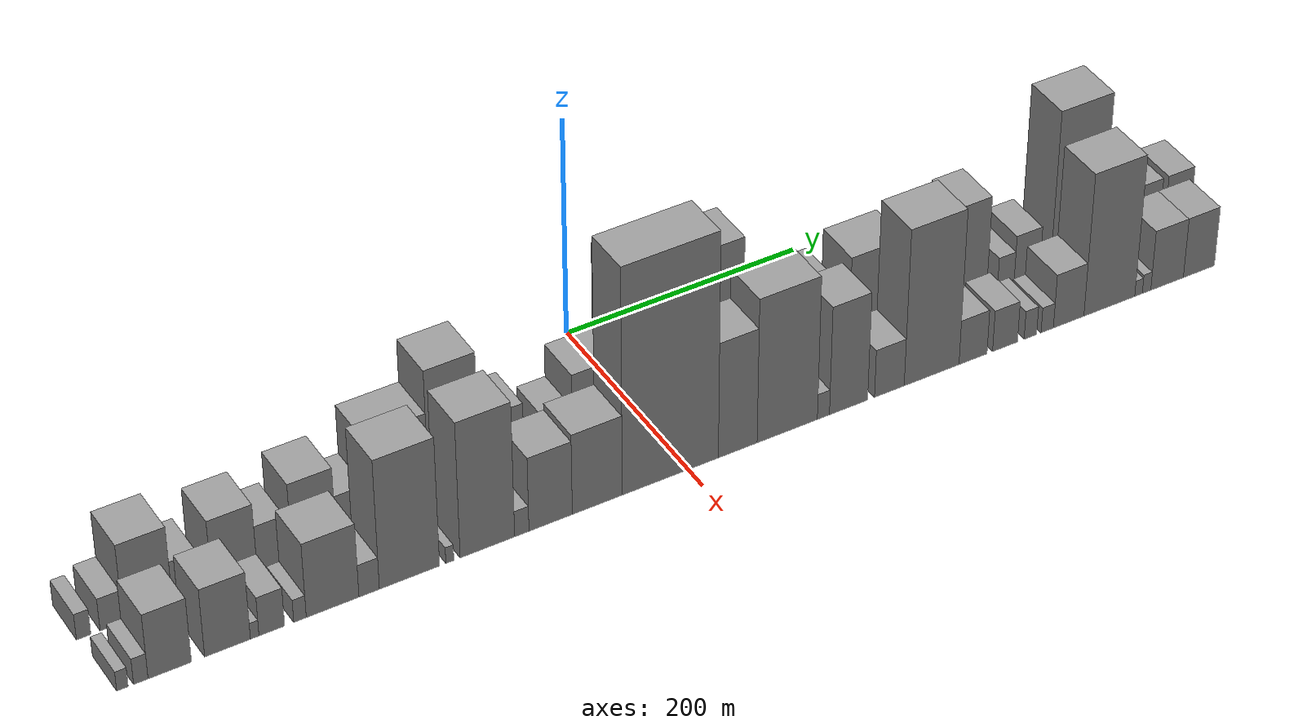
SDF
<sdf version="1.6">
 <world name="default">
  <scene>
   <sky><clouds><speed>12</speed></clouds></sky>
   <ambient>0.4 0.4 0.4 1</ambient>
   <background>0.7 0.7 0.7 1</background>
   <shadows>1</shadows>
  </scene>
  <gravity>0 0 -9.8066</gravity>
  <magnetic_field>6e-06 2.3e-05 -4.2e-05</magnetic_field>
  <physics default="0" name="default_physics" type="ode">
   <ode>
    <solver>
     <type>quick</type>
     <iters>10</iters>
     <sor>1.0</sor>
     <use_dynamic_moi_rescaling>0</use_dynamic_moi_rescaling>
    </solver>
    <constraints>
     <cfm>0</cfm>
     <erp>0.2</erp>
     <contact_max_correcting_vel>100</contact_max_correcting_vel>
     <contact_surface_layer>0.001</contact_surface_layer>
    </constraints>
   </ode>
   <max_step_size>0.004</max_step_size>
   <real_time_factor>1</real_time_factor>
   <real_time_update_rate>250</real_time_update_rate>
  </physics>
  <light name="sun" type="directional">
   <pose>0 0 10 0 0 0</pose>
   <diffuse>0.8 0.8 0.8 1</diffuse>
   <specular>0.2 0.2 0.2 1</specular>
   <attenuation>
    <range>1000</range>
    <constant>0.9</constant>
    <linear>0.01</linear>
    <quadratic>0.001</quadratic>
   </attenuation>
   <direction>-0.5 0.1 -0.9</direction>
  </light>
  <model name="building_1">
   <static>1</static>
   <pose>100.0000 -450.5411 0 0.000000 0.000000 0.000000</pose>
   <link name="link">
    <pose>0 0 12.00 0 0 0</pose>
    <collision name="collision"><geometry><box><size>40.0000 10.9178 24.0000</size></box></geometry></collision>
    <visual name="visual">
     <cast_shadows>0</cast_shadows>
     <geometry><box><size>40.0000 10.9178 24.0000</size></box></geometry>
     <material>
      <script>
       <uri>model://grey_wall/materials/scripts</uri>
       <uri>model://grey_wall/materials/textures</uri>
       <name>vrc/grey_wall</name>
      </script>
     </material>
    </visual>
   </link>
  </model>
  <model name="building_2">
   <static>1</static>
   <pose>100.0000 -429.3269 0 0.000000 0.000000 0.000000</pose>
   <link name="link">
    <pose>0 0 15.00 0 0 0</pose>
    <collision name="collision"><geometry><box><size>40.0000 17.5106 30.0000</size></box></geometry></collision>
    <visual name="visual">
     <cast_shadows>0</cast_shadows>
     <geometry><box><size>40.0000 17.5106 30.0000</size></box></geometry>
     <material>
      <script>
       <uri>model://grey_wall/materials/scripts</uri>
       <uri>model://grey_wall/materials/textures</uri>
       <name>vrc/grey_wall</name>
      </script>
     </material>
    </visual>
   </link>
  </model>
  <model name="building_3">
   <static>1</static>
   <pose>100.0000 -401.6771 0 0.000000 0.000000 0.000000</pose>
   <link name="link">
    <pose>0 0 36.00 0 0 0</pose>
    <collision name="collision"><geometry><box><size>40.0000 37.7890 72.0000</size></box></geometry></collision>
    <visual name="visual">
     <cast_shadows>0</cast_shadows>
     <geometry><box><size>40.0000 37.7890 72.0000</size></box></geometry>
     <material>
      <script>
       <uri>model://grey_wall/materials/scripts</uri>
       <uri>model://grey_wall/materials/textures</uri>
       <name>vrc/grey_wall</name>
      </script>
     </material>
    </visual>
   </link>
  </model>
  <model name="building_4">
   <static>1</static>
   <pose>100.0000 -372.0644 0 0.000000 0.000000 0.000000</pose>
   <link name="link">
    <pose>0 0 19.50 0 0 0</pose>
    <collision name="collision"><geometry><box><size>40.0000 21.4364 39.0000</size></box></geometry></collision>
    <visual name="visual">
     <cast_shadows>0</cast_shadows>
     <geometry><box><size>40.0000 21.4364 39.0000</size></box></geometry>
     <material>
      <script>
       <uri>model://grey_wall/materials/scripts</uri>
       <uri>model://grey_wall/materials/textures</uri>
       <name>vrc/grey_wall</name>
      </script>
     </material>
    </visual>
   </link>
  </model>
  <model name="building_5">
   <static>1</static>
   <pose>100.0000 -334.7644 0 0.000000 0.000000 0.000000</pose>
   <link name="link">
    <pose>0 0 31.50 0 0 0</pose>
    <collision name="collision"><geometry><box><size>40.0000 35.1636 63.0000</size></box></geometry></collision>
    <visual name="visual">
     <cast_shadows>0</cast_shadows>
     <geometry><box><size>40.0000 35.1636 63.0000</size></box></geometry>
     <material>
      <script>
       <uri>model://grey_wall/materials/scripts</uri>
       <uri>model://grey_wall/materials/textures</uri>
       <name>vrc/grey_wall</name>
      </script>
     </material>
    </visual>
   </link>
  </model>
  <model name="building_6">
   <static>1</static>
   <pose>100.0000 -305.4327 0 0.000000 0.000000 0.000000</pose>
   <link name="link">
    <pose>0 0 21.00 0 0 0</pose>
    <collision name="collision"><geometry><box><size>40.0000 23.4999 42.0000</size></box></geometry></collision>
    <visual name="visual">
     <cast_shadows>0</cast_shadows>
     <geometry><box><size>40.0000 23.4999 42.0000</size></box></geometry>
     <material>
      <script>
       <uri>model://grey_wall/materials/scripts</uri>
       <uri>model://grey_wall/materials/textures</uri>
       <name>vrc/grey_wall</name>
      </script>
     </material>
    </visual>
   </link>
  </model>
  <model name="building_7">
   <static>1</static>
   <pose>100.0000 -272.2395 0 0.000000 0.000000 0.000000</pose>
   <link name="link">
    <pose>0 0 34.50 0 0 0</pose>
    <collision name="collision"><geometry><box><size>40.0000 34.8864 69.0000</size></box></geometry></collision>
    <visual name="visual">
     <cast_shadows>0</cast_shadows>
     <geometry><box><size>40.0000 34.8864 69.0000</size></box></geometry>
     <material>
      <script>
       <uri>model://grey_wall/materials/scripts</uri>
       <uri>model://grey_wall/materials/textures</uri>
       <name>vrc/grey_wall</name>
      </script>
     </material>
    </visual>
   </link>
  </model>
  <model name="building_8">
   <static>1</static>
   <pose>100.0000 -242.7471 0 0.000000 0.000000 0.000000</pose>
   <link name="link">
    <pose>0 0 21.00 0 0 0</pose>
    <collision name="collision"><geometry><box><size>40.0000 24.0984 42.0000</size></box></geometry></collision>
    <visual name="visual">
     <cast_shadows>0</cast_shadows>
     <geometry><box><size>40.0000 24.0984 42.0000</size></box></geometry>
     <material>
      <script>
       <uri>model://grey_wall/materials/scripts</uri>
       <uri>model://grey_wall/materials/textures</uri>
       <name>vrc/grey_wall</name>
      </script>
     </material>
    </visual>
   </link>
  </model>
  <model name="building_9">
   <static>1</static>
   <pose>100.0000 -205.4425 0 0.000000 0.000000 0.000000</pose>
   <link name="link">
    <pose>0 0 43.50 0 0 0</pose>
    <collision name="collision"><geometry><box><size>40.0000 50.5108 87.0000</size></box></geometry></collision>
    <visual name="visual">
     <cast_shadows>0</cast_shadows>
     <geometry><box><size>40.0000 50.5108 87.0000</size></box></geometry>
     <material>
      <script>
       <uri>model://grey_wall/materials/scripts</uri>
       <uri>model://grey_wall/materials/textures</uri>
       <name>vrc/grey_wall</name>
      </script>
     </material>
    </visual>
   </link>
  </model>
  <model name="building_10">
   <static>1</static>
   <pose>100.0000 -159.7192 0 0.000000 0.000000 0.000000</pose>
   <link name="link">
    <pose>0 0 63.00 0 0 0</pose>
    <collision name="collision"><geometry><box><size>40.0000 40.9357 126.0000</size></box></geometry></collision>
    <visual name="visual">
     <cast_shadows>0</cast_shadows>
     <geometry><box><size>40.0000 40.9357 126.0000</size></box></geometry>
     <material>
      <script>
       <uri>model://grey_wall/materials/scripts</uri>
       <uri>model://grey_wall/materials/textures</uri>
       <name>vrc/grey_wall</name>
      </script>
     </material>
    </visual>
   </link>
  </model>
  <model name="building_11">
   <static>1</static>
   <pose>100.0000 -120.8370 0 0.000000 0.000000 0.000000</pose>
   <link name="link">
    <pose>0 0 31.50 0 0 0</pose>
    <collision name="collision"><geometry><box><size>40.0000 36.8287 63.0000</size></box></geometry></collision>
    <visual name="visual">
     <cast_shadows>0</cast_shadows>
     <geometry><box><size>40.0000 36.8287 63.0000</size></box></geometry>
     <material>
      <script>
       <uri>model://grey_wall/materials/scripts</uri>
       <uri>model://grey_wall/materials/textures</uri>
       <name>vrc/grey_wall</name>
      </script>
     </material>
    </visual>
   </link>
  </model>
  <model name="building_12">
   <static>1</static>
   <pose>100.0000 -96.7278 0 0.000000 0.000000 0.000000</pose>
   <link name="link">
    <pose>0 0 13.50 0 0 0</pose>
    <collision name="collision"><geometry><box><size>40.0000 11.3897 27.0000</size></box></geometry></collision>
    <visual name="visual">
     <cast_shadows>0</cast_shadows>
     <geometry><box><size>40.0000 11.3897 27.0000</size></box></geometry>
     <material>
      <script>
       <uri>model://grey_wall/materials/scripts</uri>
       <uri>model://grey_wall/materials/textures</uri>
       <name>vrc/grey_wall</name>
      </script>
     </material>
    </visual>
   </link>
  </model>
  <model name="building_13">
   <static>1</static>
   <pose>100.0000 -74.1513 0 0.000000 0.000000 0.000000</pose>
   <link name="link">
    <pose>0 0 21.00 0 0 0</pose>
    <collision name="collision"><geometry><box><size>40.0000 23.7634 42.0000</size></box></geometry></collision>
    <visual name="visual">
     <cast_shadows>0</cast_shadows>
     <geometry><box><size>40.0000 23.7634 42.0000</size></box></geometry>
     <material>
      <script>
       <uri>model://grey_wall/materials/scripts</uri>
       <uri>model://grey_wall/materials/textures</uri>
       <name>vrc/grey_wall</name>
      </script>
     </material>
    </visual>
   </link>
  </model>
  <model name="building_14">
   <static>1</static>
   <pose>100.0000 -42.3100 0 0.000000 0.000000 0.000000</pose>
   <link name="link">
    <pose>0 0 36.00 0 0 0</pose>
    <collision name="collision"><geometry><box><size>40.0000 39.9191 72.0000</size></box></geometry></collision>
    <visual name="visual">
     <cast_shadows>0</cast_shadows>
     <geometry><box><size>40.0000 39.9191 72.0000</size></box></geometry>
     <material>
      <script>
       <uri>model://grey_wall/materials/scripts</uri>
       <uri>model://grey_wall/materials/textures</uri>
       <name>vrc/grey_wall</name>
      </script>
     </material>
    </visual>
   </link>
  </model>
  <model name="building_15">
   <static>1</static>
   <pose>100.0000 1.8041 0 0.000000 0.000000 0.000000</pose>
   <link name="link">
    <pose>0 0 75.00 0 0 0</pose>
    <collision name="collision"><geometry><box><size>40.0000 48.3091 150.0000</size></box></geometry></collision>
    <visual name="visual">
     <cast_shadows>0</cast_shadows>
     <geometry><box><size>40.0000 48.3091 150.0000</size></box></geometry>
     <material>
      <script>
       <uri>model://grey_wall/materials/scripts</uri>
       <uri>model://grey_wall/materials/textures</uri>
       <name>vrc/grey_wall</name>
      </script>
     </material>
    </visual>
   </link>
  </model>
  <model name="building_16">
   <static>1</static>
   <pose>100.0000 54.0639 0 0.000000 0.000000 0.000000</pose>
   <link name="link">
    <pose>0 0 70.50 0 0 0</pose>
    <collision name="collision"><geometry><box><size>40.0000 56.2105 141.0000</size></box></geometry></collision>
    <visual name="visual">
     <cast_shadows>0</cast_shadows>
     <geometry><box><size>40.0000 56.2105 141.0000</size></box></geometry>
     <material>
      <script>
       <uri>model://grey_wall/materials/scripts</uri>
       <uri>model://grey_wall/materials/textures</uri>
       <name>vrc/grey_wall</name>
      </script>
     </material>
    </visual>
   </link>
  </model>
  <model name="building_17">
   <static>1</static>
   <pose>100.0000 99.0223 0 0.000000 0.000000 0.000000</pose>
   <link name="link">
    <pose>0 0 28.50 0 0 0</pose>
    <collision name="collision"><geometry><box><size>40.0000 33.7064 57.0000</size></box></geometry></collision>
    <visual name="visual">
     <cast_shadows>0</cast_shadows>
     <geometry><box><size>40.0000 33.7064 57.0000</size></box></geometry>
     <material>
      <script>
       <uri>model://grey_wall/materials/scripts</uri>
       <uri>model://grey_wall/materials/textures</uri>
       <name>vrc/grey_wall</name>
      </script>
     </material>
    </visual>
   </link>
  </model>
  <model name="building_18">
   <static>1</static>
   <pose>100.0000 119.7152 0 0.000000 0.000000 0.000000</pose>
   <link name="link">
    <pose>0 0 9.00 0 0 0</pose>
    <collision name="collision"><geometry><box><size>40.0000 7.6794 18.0000</size></box></geometry></collision>
    <visual name="visual">
     <cast_shadows>0</cast_shadows>
     <geometry><box><size>40.0000 7.6794 18.0000</size></box></geometry>
     <material>
      <script>
       <uri>model://grey_wall/materials/scripts</uri>
       <uri>model://grey_wall/materials/textures</uri>
       <name>vrc/grey_wall</name>
      </script>
     </material>
    </visual>
   </link>
  </model>
  <model name="building_19">
   <static>1</static>
   <pose>100.0000 141.9152 0 0.000000 0.000000 0.000000</pose>
   <link name="link">
    <pose>0 0 36.00 0 0 0</pose>
    <collision name="collision"><geometry><box><size>40.0000 36.7206 72.0000</size></box></geometry></collision>
    <visual name="visual">
     <cast_shadows>0</cast_shadows>
     <geometry><box><size>40.0000 36.7206 72.0000</size></box></geometry>
     <material>
      <script>
       <uri>model://grey_wall/materials/scripts</uri>
       <uri>model://grey_wall/materials/textures</uri>
       <name>vrc/grey_wall</name>
      </script>
     </material>
    </visual>
   </link>
  </model>
  <model name="building_20">
   <static>1</static>
   <pose>100.0000 170.6865 0 0.000000 0.000000 0.000000</pose>
   <link name="link">
    <pose>0 0 10.50 0 0 0</pose>
    <collision name="collision"><geometry><box><size>40.0000 8.8220 21.0000</size></box></geometry></collision>
    <visual name="visual">
     <cast_shadows>0</cast_shadows>
     <geometry><box><size>40.0000 8.8220 21.0000</size></box></geometry>
     <material>
      <script>
       <uri>model://grey_wall/materials/scripts</uri>
       <uri>model://grey_wall/materials/textures</uri>
       <name>vrc/grey_wall</name>
      </script>
     </material>
    </visual>
   </link>
  </model>
  <model name="building_21">
   <static>1</static>
   <pose>100.0000 198.5647 0 0.000000 0.000000 0.000000</pose>
   <link name="link">
    <pose>0 0 42.00 0 0 0</pose>
    <collision name="collision"><geometry><box><size>40.0000 46.9344 84.0000</size></box></geometry></collision>
    <visual name="visual">
     <cast_shadows>0</cast_shadows>
     <geometry><box><size>40.0000 46.9344 84.0000</size></box></geometry>
     <material>
      <script>
       <uri>model://grey_wall/materials/scripts</uri>
       <uri>model://grey_wall/materials/textures</uri>
       <name>vrc/grey_wall</name>
      </script>
     </material>
    </visual>
   </link>
  </model>
  <model name="building_22">
   <static>1</static>
   <pose>100.0000 225.3396 0 0.000000 0.000000 0.000000</pose>
   <link name="link">
    <pose>0 0 7.50 0 0 0</pose>
    <collision name="collision"><geometry><box><size>40.0000 6.6154 15.0000</size></box></geometry></collision>
    <visual name="visual">
     <cast_shadows>0</cast_shadows>
     <geometry><box><size>40.0000 6.6154 15.0000</size></box></geometry>
     <material>
      <script>
       <uri>model://grey_wall/materials/scripts</uri>
       <uri>model://grey_wall/materials/textures</uri>
       <name>vrc/grey_wall</name>
      </script>
     </material>
    </visual>
   </link>
  </model>
  <model name="building_23">
   <static>1</static>
   <pose>100.0000 240.6629 0 0.000000 0.000000 0.000000</pose>
   <link name="link">
    <pose>0 0 12.00 0 0 0</pose>
    <collision name="collision"><geometry><box><size>40.0000 10.0314 24.0000</size></box></geometry></collision>
    <visual name="visual">
     <cast_shadows>0</cast_shadows>
     <geometry><box><size>40.0000 10.0314 24.0000</size></box></geometry>
     <material>
      <script>
       <uri>model://grey_wall/materials/scripts</uri>
       <uri>model://grey_wall/materials/textures</uri>
       <name>vrc/grey_wall</name>
      </script>
     </material>
    </visual>
   </link>
  </model>
  <model name="building_24">
   <static>1</static>
   <pose>100.0000 254.2844 0 0.000000 0.000000 0.000000</pose>
   <link name="link">
    <pose>0 0 15.00 0 0 0</pose>
    <collision name="collision"><geometry><box><size>40.0000 17.2115 30.0000</size></box></geometry></collision>
    <visual name="visual">
     <cast_shadows>0</cast_shadows>
     <geometry><box><size>40.0000 17.2115 30.0000</size></box></geometry>
     <material>
      <script>
       <uri>model://grey_wall/materials/scripts</uri>
       <uri>model://grey_wall/materials/textures</uri>
       <name>vrc/grey_wall</name>
      </script>
     </material>
    </visual>
   </link>
  </model>
  <model name="building_25">
   <static>1</static>
   <pose>100.0000 284.8559 0 0.000000 0.000000 0.000000</pose>
   <link name="link">
    <pose>0 0 46.50 0 0 0</pose>
    <collision name="collision"><geometry><box><size>40.0000 27.9316 93.0000</size></box></geometry></collision>
    <visual name="visual">
     <cast_shadows>0</cast_shadows>
     <geometry><box><size>40.0000 27.9316 93.0000</size></box></geometry>
     <material>
      <script>
       <uri>model://grey_wall/materials/scripts</uri>
       <uri>model://grey_wall/materials/textures</uri>
       <name>vrc/grey_wall</name>
      </script>
     </material>
    </visual>
   </link>
  </model>
  <model name="building_26">
   <static>1</static>
   <pose>100.0000 316.4387 0 0.000000 0.000000 0.000000</pose>
   <link name="link">
    <pose>0 0 15.00 0 0 0</pose>
    <collision name="collision"><geometry><box><size>40.0000 15.2339 30.0000</size></box></geometry></collision>
    <visual name="visual">
     <cast_shadows>0</cast_shadows>
     <geometry><box><size>40.0000 15.2339 30.0000</size></box></geometry>
     <material>
      <script>
       <uri>model://grey_wall/materials/scripts</uri>
       <uri>model://grey_wall/materials/textures</uri>
       <name>vrc/grey_wall</name>
      </script>
     </material>
    </visual>
   </link>
  </model>
  <model name="building_27">
   <static>1</static>
   <pose>100.0000 335.7708 0 0.000000 0.000000 0.000000</pose>
   <link name="link">
    <pose>0 0 22.50 0 0 0</pose>
    <collision name="collision"><geometry><box><size>40.0000 23.4305 45.0000</size></box></geometry></collision>
    <visual name="visual">
     <cast_shadows>0</cast_shadows>
     <geometry><box><size>40.0000 23.4305 45.0000</size></box></geometry>
     <material>
      <script>
       <uri>model://grey_wall/materials/scripts</uri>
       <uri>model://grey_wall/materials/textures</uri>
       <name>vrc/grey_wall</name>
      </script>
     </material>
    </visual>
   </link>
  </model>
  <model name="building_28">
   <static>1</static>
   <pose>100.0000 381.2269 0 0.000000 0.000000 0.000000</pose>
   <link name="link">
    <pose>0 0 75.00 0 0 0</pose>
    <collision name="collision"><geometry><box><size>40.0000 47.4817 150.0000</size></box></geometry></collision>
    <visual name="visual">
     <cast_shadows>0</cast_shadows>
     <geometry><box><size>40.0000 47.4817 150.0000</size></box></geometry>
     <material>
      <script>
       <uri>model://grey_wall/materials/scripts</uri>
       <uri>model://grey_wall/materials/textures</uri>
       <name>vrc/grey_wall</name>
      </script>
     </material>
    </visual>
   </link>
  </model>
  <model name="building_29">
   <static>1</static>
   <pose>100.0000 413.8566 0 0.000000 0.000000 0.000000</pose>
   <link name="link">
    <pose>0 0 15.00 0 0 0</pose>
    <collision name="collision"><geometry><box><size>40.0000 17.7777 30.0000</size></box></geometry></collision>
    <visual name="visual">
     <cast_shadows>0</cast_shadows>
     <geometry><box><size>40.0000 17.7777 30.0000</size></box></geometry>
     <material>
      <script>
       <uri>model://grey_wall/materials/scripts</uri>
       <uri>model://grey_wall/materials/textures</uri>
       <name>vrc/grey_wall</name>
      </script>
     </material>
    </visual>
   </link>
  </model>
  <model name="building_30">
   <static>1</static>
   <pose>100.0000 445.0849 0 0.000000 0.000000 0.000000</pose>
   <link name="link">
    <pose>0 0 24.00 0 0 0</pose>
    <collision name="collision"><geometry><box><size>40.0000 28.6789 48.0000</size></box></geometry></collision>
    <visual name="visual">
     <cast_shadows>0</cast_shadows>
     <geometry><box><size>40.0000 28.6789 48.0000</size></box></geometry>
     <material>
      <script>
       <uri>model://grey_wall/materials/scripts</uri>
       <uri>model://grey_wall/materials/textures</uri>
       <name>vrc/grey_wall</name>
      </script>
     </material>
    </visual>
   </link>
  </model>
  <model name="building_31">
   <static>1</static>
   <pose>100.0000 476.7768 0 0.000000 0.000000 0.000000</pose>
   <link name="link">
    <pose>0 0 24.00 0 0 0</pose>
    <collision name="collision"><geometry><box><size>40.0000 24.7049 48.0000</size></box></geometry></collision>
    <visual name="visual">
     <cast_shadows>0</cast_shadows>
     <geometry><box><size>40.0000 24.7049 48.0000</size></box></geometry>
     <material>
      <script>
       <uri>model://grey_wall/materials/scripts</uri>
       <uri>model://grey_wall/materials/textures</uri>
       <name>vrc/grey_wall</name>
      </script>
     </material>
    </visual>
   </link>
  </model>
  <model name="building_32">
   <static>1</static>
   <pose>160.0000 -448.6792 0 0.000000 0.000000 0.000000</pose>
   <link name="link">
    <pose>0 0 9.00 0 0 0</pose>
    <collision name="collision"><geometry><box><size>40.0000 8.6415 18.0000</size></box></geometry></collision>
    <visual name="visual">
     <cast_shadows>0</cast_shadows>
     <geometry><box><size>40.0000 8.6415 18.0000</size></box></geometry>
     <material>
      <script>
       <uri>model://grey_wall/materials/scripts</uri>
       <uri>model://grey_wall/materials/textures</uri>
       <name>vrc/grey_wall</name>
      </script>
     </material>
    </visual>
   </link>
  </model>
  <model name="building_33">
   <static>1</static>
   <pose>160.0000 -434.9047 0 0.000000 0.000000 0.000000</pose>
   <link name="link">
    <pose>0 0 12.00 0 0 0</pose>
    <collision name="collision"><geometry><box><size>40.0000 10.9076 24.0000</size></box></geometry></collision>
    <visual name="visual">
     <cast_shadows>0</cast_shadows>
     <geometry><box><size>40.0000 10.9076 24.0000</size></box></geometry>
     <material>
      <script>
       <uri>model://grey_wall/materials/scripts</uri>
       <uri>model://grey_wall/materials/textures</uri>
       <name>vrc/grey_wall</name>
      </script>
     </material>
    </visual>
   </link>
  </model>
  <model name="building_34">
   <static>1</static>
   <pose>160.0000 -413.0833 0 0.000000 0.000000 0.000000</pose>
   <link name="link">
    <pose>0 0 30.00 0 0 0</pose>
    <collision name="collision"><geometry><box><size>40.0000 32.7351 60.0000</size></box></geometry></collision>
    <visual name="visual">
     <cast_shadows>0</cast_shadows>
     <geometry><box><size>40.0000 32.7351 60.0000</size></box></geometry>
     <material>
      <script>
       <uri>model://grey_wall/materials/scripts</uri>
       <uri>model://grey_wall/materials/textures</uri>
       <name>vrc/grey_wall</name>
      </script>
     </material>
    </visual>
   </link>
  </model>
  <model name="building_35">
   <static>1</static>
   <pose>160.0000 -369.2167 0 0.000000 0.000000 0.000000</pose>
   <link name="link">
    <pose>0 0 31.50 0 0 0</pose>
    <collision name="collision"><geometry><box><size>40.0000 34.9982 63.0000</size></box></geometry></collision>
    <visual name="visual">
     <cast_shadows>0</cast_shadows>
     <geometry><box><size>40.0000 34.9982 63.0000</size></box></geometry>
     <material>
      <script>
       <uri>model://grey_wall/materials/scripts</uri>
       <uri>model://grey_wall/materials/textures</uri>
       <name>vrc/grey_wall</name>
      </script>
     </material>
    </visual>
   </link>
  </model>
  <model name="building_36">
   <static>1</static>
   <pose>160.0000 -348.4336 0 0.000000 0.000000 0.000000</pose>
   <link name="link">
    <pose>0 0 7.50 0 0 0</pose>
    <collision name="collision"><geometry><box><size>40.0000 6.5679 15.0000</size></box></geometry></collision>
    <visual name="visual">
     <cast_shadows>0</cast_shadows>
     <geometry><box><size>40.0000 6.5679 15.0000</size></box></geometry>
     <material>
      <script>
       <uri>model://grey_wall/materials/scripts</uri>
       <uri>model://grey_wall/materials/textures</uri>
       <name>vrc/grey_wall</name>
      </script>
     </material>
    </visual>
   </link>
  </model>
  <model name="building_37">
   <static>1</static>
   <pose>160.0000 -335.2588 0 0.000000 0.000000 0.000000</pose>
   <link name="link">
    <pose>0 0 18.00 0 0 0</pose>
    <collision name="collision"><geometry><box><size>40.0000 19.7817 36.0000</size></box></geometry></collision>
    <visual name="visual">
     <cast_shadows>0</cast_shadows>
     <geometry><box><size>40.0000 19.7817 36.0000</size></box></geometry>
     <material>
      <script>
       <uri>model://grey_wall/materials/scripts</uri>
       <uri>model://grey_wall/materials/textures</uri>
       <name>vrc/grey_wall</name>
      </script>
     </material>
    </visual>
   </link>
  </model>
  <model name="building_38">
   <static>1</static>
   <pose>160.0000 -313.4929 0 0.000000 0.000000 0.000000</pose>
   <link name="link">
    <pose>0 0 10.50 0 0 0</pose>
    <collision name="collision"><geometry><box><size>40.0000 9.7501 21.0000</size></box></geometry></collision>
    <visual name="visual">
     <cast_shadows>0</cast_shadows>
     <geometry><box><size>40.0000 9.7501 21.0000</size></box></geometry>
     <material>
      <script>
       <uri>model://grey_wall/materials/scripts</uri>
       <uri>model://grey_wall/materials/textures</uri>
       <name>vrc/grey_wall</name>
      </script>
     </material>
    </visual>
   </link>
  </model>
  <model name="building_39">
   <static>1</static>
   <pose>160.0000 -288.0586 0 0.000000 0.000000 0.000000</pose>
   <link name="link">
    <pose>0 0 34.50 0 0 0</pose>
    <collision name="collision"><geometry><box><size>40.0000 41.1185 69.0000</size></box></geometry></collision>
    <visual name="visual">
     <cast_shadows>0</cast_shadows>
     <geometry><box><size>40.0000 41.1185 69.0000</size></box></geometry>
     <material>
      <script>
       <uri>model://grey_wall/materials/scripts</uri>
       <uri>model://grey_wall/materials/textures</uri>
       <name>vrc/grey_wall</name>
      </script>
     </material>
    </visual>
   </link>
  </model>
  <model name="building_40">
   <static>1</static>
   <pose>160.0000 -259.4620 0 0.000000 0.000000 0.000000</pose>
   <link name="link">
    <pose>0 0 15.00 0 0 0</pose>
    <collision name="collision"><geometry><box><size>40.0000 16.0746 30.0000</size></box></geometry></collision>
    <visual name="visual">
     <cast_shadows>0</cast_shadows>
     <geometry><box><size>40.0000 16.0746 30.0000</size></box></geometry>
     <material>
      <script>
       <uri>model://grey_wall/materials/scripts</uri>
       <uri>model://grey_wall/materials/textures</uri>
       <name>vrc/grey_wall</name>
      </script>
     </material>
    </visual>
   </link>
  </model>
  <model name="building_41">
   <static>1</static>
   <pose>160.0000 -227.5843 0 0.000000 0.000000 0.000000</pose>
   <link name="link">
    <pose>0 0 60.00 0 0 0</pose>
    <collision name="collision"><geometry><box><size>40.0000 47.6808 120.0000</size></box></geometry></collision>
    <visual name="visual">
     <cast_shadows>0</cast_shadows>
     <geometry><box><size>40.0000 47.6808 120.0000</size></box></geometry>
     <material>
      <script>
       <uri>model://grey_wall/materials/scripts</uri>
       <uri>model://grey_wall/materials/textures</uri>
       <name>vrc/grey_wall</name>
      </script>
     </material>
    </visual>
   </link>
  </model>
  <model name="building_42">
   <static>1</static>
   <pose>160.0000 -195.5271 0 0.000000 0.000000 0.000000</pose>
   <link name="link">
    <pose>0 0 7.50 0 0 0</pose>
    <collision name="collision"><geometry><box><size>40.0000 6.4336 15.0000</size></box></geometry></collision>
    <visual name="visual">
     <cast_shadows>0</cast_shadows>
     <geometry><box><size>40.0000 6.4336 15.0000</size></box></geometry>
     <material>
      <script>
       <uri>model://grey_wall/materials/scripts</uri>
       <uri>model://grey_wall/materials/textures</uri>
       <name>vrc/grey_wall</name>
      </script>
     </material>
    </visual>
   </link>
  </model>
  <model name="building_43">
   <static>1</static>
   <pose>160.0000 -165.3380 0 0.000000 0.000000 0.000000</pose>
   <link name="link">
    <pose>0 0 63.00 0 0 0</pose>
    <collision name="collision"><geometry><box><size>40.0000 43.9445 126.0000</size></box></geometry></collision>
    <visual name="visual">
     <cast_shadows>0</cast_shadows>
     <geometry><box><size>40.0000 43.9445 126.0000</size></box></geometry>
     <material>
      <script>
       <uri>model://grey_wall/materials/scripts</uri>
       <uri>model://grey_wall/materials/textures</uri>
       <name>vrc/grey_wall</name>
      </script>
     </material>
    </visual>
   </link>
  </model>
  <model name="building_44">
   <static>1</static>
   <pose>160.0000 -137.5514 0 0.000000 0.000000 0.000000</pose>
   <link name="link">
    <pose>0 0 12.00 0 0 0</pose>
    <collision name="collision"><geometry><box><size>40.0000 11.6289 24.0000</size></box></geometry></collision>
    <visual name="visual">
     <cast_shadows>0</cast_shadows>
     <geometry><box><size>40.0000 11.6289 24.0000</size></box></geometry>
     <material>
      <script>
       <uri>model://grey_wall/materials/scripts</uri>
       <uri>model://grey_wall/materials/textures</uri>
       <name>vrc/grey_wall</name>
      </script>
     </material>
    </visual>
   </link>
  </model>
  <model name="building_45">
   <static>1</static>
   <pose>160.0000 -114.0271 0 0.000000 0.000000 0.000000</pose>
   <link name="link">
    <pose>0 0 34.50 0 0 0</pose>
    <collision name="collision"><geometry><box><size>40.0000 35.4196 69.0000</size></box></geometry></collision>
    <visual name="visual">
     <cast_shadows>0</cast_shadows>
     <geometry><box><size>40.0000 35.4196 69.0000</size></box></geometry>
     <material>
      <script>
       <uri>model://grey_wall/materials/scripts</uri>
       <uri>model://grey_wall/materials/textures</uri>
       <name>vrc/grey_wall</name>
      </script>
     </material>
    </visual>
   </link>
  </model>
  <model name="building_46">
   <static>1</static>
   <pose>160.0000 -75.7179 0 0.000000 0.000000 0.000000</pose>
   <link name="link">
    <pose>0 0 37.50 0 0 0</pose>
    <collision name="collision"><geometry><box><size>40.0000 41.1987 75.0000</size></box></geometry></collision>
    <visual name="visual">
     <cast_shadows>0</cast_shadows>
     <geometry><box><size>40.0000 41.1987 75.0000</size></box></geometry>
     <material>
      <script>
       <uri>model://grey_wall/materials/scripts</uri>
       <uri>model://grey_wall/materials/textures</uri>
       <name>vrc/grey_wall</name>
      </script>
     </material>
    </visual>
   </link>
  </model>
  <model name="building_47">
   <static>1</static>
   <pose>160.0000 -14.8886 0 0.000000 0.000000 0.000000</pose>
   <link name="link">
    <pose>0 0 105.00 0 0 0</pose>
    <collision name="collision"><geometry><box><size>40.0000 80.4601 210.0000</size></box></geometry></collision>
    <visual name="visual">
     <cast_shadows>0</cast_shadows>
     <geometry><box><size>40.0000 80.4601 210.0000</size></box></geometry>
     <material>
      <script>
       <uri>model://grey_wall/materials/scripts</uri>
       <uri>model://grey_wall/materials/textures</uri>
       <name>vrc/grey_wall</name>
      </script>
     </material>
    </visual>
   </link>
  </model>
  <model name="building_48">
   <static>1</static>
   <pose>160.0000 41.7824 0 0.000000 0.000000 0.000000</pose>
   <link name="link">
    <pose>0 0 54.00 0 0 0</pose>
    <collision name="collision"><geometry><box><size>40.0000 32.8818 108.0000</size></box></geometry></collision>
    <visual name="visual">
     <cast_shadows>0</cast_shadows>
     <geometry><box><size>40.0000 32.8818 108.0000</size></box></geometry>
     <material>
      <script>
       <uri>model://grey_wall/materials/scripts</uri>
       <uri>model://grey_wall/materials/textures</uri>
       <name>vrc/grey_wall</name>
      </script>
     </material>
    </visual>
   </link>
  </model>
  <model name="building_49">
   <static>1</static>
   <pose>160.0000 84.0958 0 0.000000 0.000000 0.000000</pose>
   <link name="link">
    <pose>0 0 67.50 0 0 0</pose>
    <collision name="collision"><geometry><box><size>40.0000 51.7450 135.0000</size></box></geometry></collision>
    <visual name="visual">
     <cast_shadows>0</cast_shadows>
     <geometry><box><size>40.0000 51.7450 135.0000</size></box></geometry>
     <material>
      <script>
       <uri>model://grey_wall/materials/scripts</uri>
       <uri>model://grey_wall/materials/textures</uri>
       <name>vrc/grey_wall</name>
      </script>
     </material>
    </visual>
   </link>
  </model>
  <model name="building_50">
   <static>1</static>
   <pose>160.0000 115.2137 0 0.000000 0.000000 0.000000</pose>
   <link name="link">
    <pose>0 0 12.00 0 0 0</pose>
    <collision name="collision"><geometry><box><size>40.0000 10.4908 24.0000</size></box></geometry></collision>
    <visual name="visual">
     <cast_shadows>0</cast_shadows>
     <geometry><box><size>40.0000 10.4908 24.0000</size></box></geometry>
     <material>
      <script>
       <uri>model://grey_wall/materials/scripts</uri>
       <uri>model://grey_wall/materials/textures</uri>
       <name>vrc/grey_wall</name>
      </script>
     </material>
    </visual>
   </link>
  </model>
  <model name="building_51">
   <static>1</static>
   <pose>160.0000 137.0658 0 0.000000 0.000000 0.000000</pose>
   <link name="link">
    <pose>0 0 51.00 0 0 0</pose>
    <collision name="collision"><geometry><box><size>40.0000 33.2134 102.0000</size></box></geometry></collision>
    <visual name="visual">
     <cast_shadows>0</cast_shadows>
     <geometry><box><size>40.0000 33.2134 102.0000</size></box></geometry>
     <material>
      <script>
       <uri>model://grey_wall/materials/scripts</uri>
       <uri>model://grey_wall/materials/textures</uri>
       <name>vrc/grey_wall</name>
      </script>
     </material>
    </visual>
   </link>
  </model>
  <model name="building_52">
   <static>1</static>
   <pose>160.0000 172.7191 0 0.000000 0.000000 0.000000</pose>
   <link name="link">
    <pose>0 0 22.50 0 0 0</pose>
    <collision name="collision"><geometry><box><size>40.0000 26.0932 45.0000</size></box></geometry></collision>
    <visual name="visual">
     <cast_shadows>0</cast_shadows>
     <geometry><box><size>40.0000 26.0932 45.0000</size></box></geometry>
     <material>
      <script>
       <uri>model://grey_wall/materials/scripts</uri>
       <uri>model://grey_wall/materials/textures</uri>
       <name>vrc/grey_wall</name>
      </script>
     </material>
    </visual>
   </link>
  </model>
  <model name="building_53">
   <static>1</static>
   <pose>160.0000 210.0413 0 0.000000 0.000000 0.000000</pose>
   <link name="link">
    <pose>0 0 73.50 0 0 0</pose>
    <collision name="collision"><geometry><box><size>40.0000 48.5513 147.0000</size></box></geometry></collision>
    <visual name="visual">
     <cast_shadows>0</cast_shadows>
     <geometry><box><size>40.0000 48.5513 147.0000</size></box></geometry>
     <material>
      <script>
       <uri>model://grey_wall/materials/scripts</uri>
       <uri>model://grey_wall/materials/textures</uri>
       <name>vrc/grey_wall</name>
      </script>
     </material>
    </visual>
   </link>
  </model>
  <model name="building_54">
   <static>1</static>
   <pose>160.0000 246.8471 0 0.000000 0.000000 0.000000</pose>
   <link name="link">
    <pose>0 0 21.00 0 0 0</pose>
    <collision name="collision"><geometry><box><size>40.0000 25.0604 42.0000</size></box></geometry></collision>
    <visual name="visual">
     <cast_shadows>0</cast_shadows>
     <geometry><box><size>40.0000 25.0604 42.0000</size></box></geometry>
     <material>
      <script>
       <uri>model://grey_wall/materials/scripts</uri>
       <uri>model://grey_wall/materials/textures</uri>
       <name>vrc/grey_wall</name>
      </script>
     </material>
    </visual>
   </link>
  </model>
  <model name="building_55">
   <static>1</static>
   <pose>160.0000 275.5792 0 0.000000 0.000000 0.000000</pose>
   <link name="link">
    <pose>0 0 19.50 0 0 0</pose>
    <collision name="collision"><geometry><box><size>40.0000 22.4037 39.0000</size></box></geometry></collision>
    <visual name="visual">
     <cast_shadows>0</cast_shadows>
     <geometry><box><size>40.0000 22.4037 39.0000</size></box></geometry>
     <material>
      <script>
       <uri>model://grey_wall/materials/scripts</uri>
       <uri>model://grey_wall/materials/textures</uri>
       <name>vrc/grey_wall</name>
      </script>
     </material>
    </visual>
   </link>
  </model>
  <model name="building_56">
   <static>1</static>
   <pose>160.0000 298.4655 0 0.000000 0.000000 0.000000</pose>
   <link name="link">
    <pose>0 0 13.50 0 0 0</pose>
    <collision name="collision"><geometry><box><size>40.0000 11.3691 27.0000</size></box></geometry></collision>
    <visual name="visual">
     <cast_shadows>0</cast_shadows>
     <geometry><box><size>40.0000 11.3691 27.0000</size></box></geometry>
     <material>
      <script>
       <uri>model://grey_wall/materials/scripts</uri>
       <uri>model://grey_wall/materials/textures</uri>
       <name>vrc/grey_wall</name>
      </script>
     </material>
    </visual>
   </link>
  </model>
  <model name="building_57">
   <static>1</static>
   <pose>160.0000 313.7511 0 0.000000 0.000000 0.000000</pose>
   <link name="link">
    <pose>0 0 12.00 0 0 0</pose>
    <collision name="collision"><geometry><box><size>40.0000 11.2020 24.0000</size></box></geometry></collision>
    <visual name="visual">
     <cast_shadows>0</cast_shadows>
     <geometry><box><size>40.0000 11.2020 24.0000</size></box></geometry>
     <material>
      <script>
       <uri>model://grey_wall/materials/scripts</uri>
       <uri>model://grey_wall/materials/textures</uri>
       <name>vrc/grey_wall</name>
      </script>
     </material>
    </visual>
   </link>
  </model>
  <model name="building_58">
   <static>1</static>
   <pose>160.0000 333.2796 0 0.000000 0.000000 0.000000</pose>
   <link name="link">
    <pose>0 0 25.50 0 0 0</pose>
    <collision name="collision"><geometry><box><size>40.0000 27.8549 51.0000</size></box></geometry></collision>
    <visual name="visual">
     <cast_shadows>0</cast_shadows>
     <geometry><box><size>40.0000 27.8549 51.0000</size></box></geometry>
     <material>
      <script>
       <uri>model://grey_wall/materials/scripts</uri>
       <uri>model://grey_wall/materials/textures</uri>
       <name>vrc/grey_wall</name>
      </script>
     </material>
    </visual>
   </link>
  </model>
  <model name="building_59">
   <static>1</static>
   <pose>160.0000 370.6299 0 0.000000 0.000000 0.000000</pose>
   <link name="link">
    <pose>0 0 67.50 0 0 0</pose>
    <collision name="collision"><geometry><box><size>40.0000 46.8457 135.0000</size></box></geometry></collision>
    <visual name="visual">
     <cast_shadows>0</cast_shadows>
     <geometry><box><size>40.0000 46.8457 135.0000</size></box></geometry>
     <material>
      <script>
       <uri>model://grey_wall/materials/scripts</uri>
       <uri>model://grey_wall/materials/textures</uri>
       <name>vrc/grey_wall</name>
      </script>
     </material>
    </visual>
   </link>
  </model>
  <model name="building_60">
   <static>1</static>
   <pose>160.0000 397.5866 0 0.000000 0.000000 0.000000</pose>
   <link name="link">
    <pose>0 0 7.50 0 0 0</pose>
    <collision name="collision"><geometry><box><size>40.0000 7.0677 15.0000</size></box></geometry></collision>
    <visual name="visual">
     <cast_shadows>0</cast_shadows>
     <geometry><box><size>40.0000 7.0677 15.0000</size></box></geometry>
     <material>
      <script>
       <uri>model://grey_wall/materials/scripts</uri>
       <uri>model://grey_wall/materials/textures</uri>
       <name>vrc/grey_wall</name>
      </script>
     </material>
    </visual>
   </link>
  </model>
  <model name="building_61">
   <static>1</static>
   <pose>160.0000 405.0201 0 0.000000 0.000000 0.000000</pose>
   <link name="link">
    <pose>0 0 9.00 0 0 0</pose>
    <collision name="collision"><geometry><box><size>40.0000 7.7992 18.0000</size></box></geometry></collision>
    <visual name="visual">
     <cast_shadows>0</cast_shadows>
     <geometry><box><size>40.0000 7.7992 18.0000</size></box></geometry>
     <material>
      <script>
       <uri>model://grey_wall/materials/scripts</uri>
       <uri>model://grey_wall/materials/textures</uri>
       <name>vrc/grey_wall</name>
      </script>
     </material>
    </visual>
   </link>
  </model>
  <model name="building_62">
   <static>1</static>
   <pose>160.0000 424.1263 0 0.000000 0.000000 0.000000</pose>
   <link name="link">
    <pose>0 0 28.50 0 0 0</pose>
    <collision name="collision"><geometry><box><size>40.0000 30.4131 57.0000</size></box></geometry></collision>
    <visual name="visual">
     <cast_shadows>0</cast_shadows>
     <geometry><box><size>40.0000 30.4131 57.0000</size></box></geometry>
     <material>
      <script>
       <uri>model://grey_wall/materials/scripts</uri>
       <uri>model://grey_wall/materials/textures</uri>
       <name>vrc/grey_wall</name>
      </script>
     </material>
    </visual>
   </link>
  </model>
  <model name="building_63">
   <static>1</static>
   <pose>160.0000 453.8920 0 0.000000 0.000000 0.000000</pose>
   <link name="link">
    <pose>0 0 28.50 0 0 0</pose>
    <collision name="collision"><geometry><box><size>40.0000 29.1182 57.0000</size></box></geometry></collision>
    <visual name="visual">
     <cast_shadows>0</cast_shadows>
     <geometry><box><size>40.0000 29.1182 57.0000</size></box></geometry>
     <material>
      <script>
       <uri>model://grey_wall/materials/scripts</uri>
       <uri>model://grey_wall/materials/textures</uri>
       <name>vrc/grey_wall</name>
      </script>
     </material>
    </visual>
   </link>
  </model>
 </world>
</sdf>
